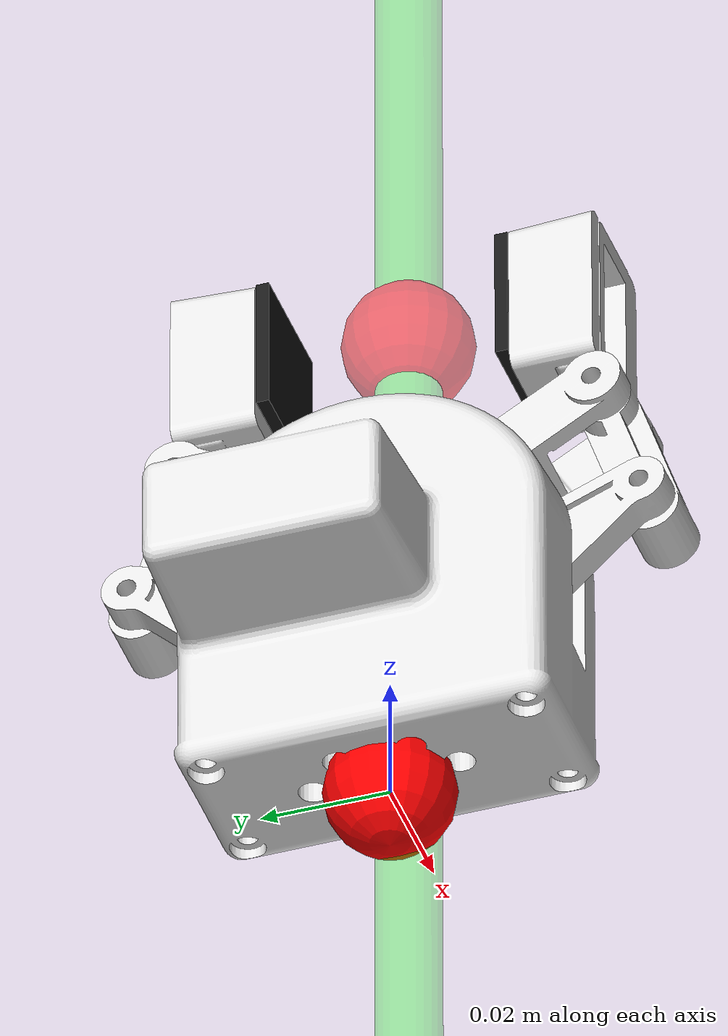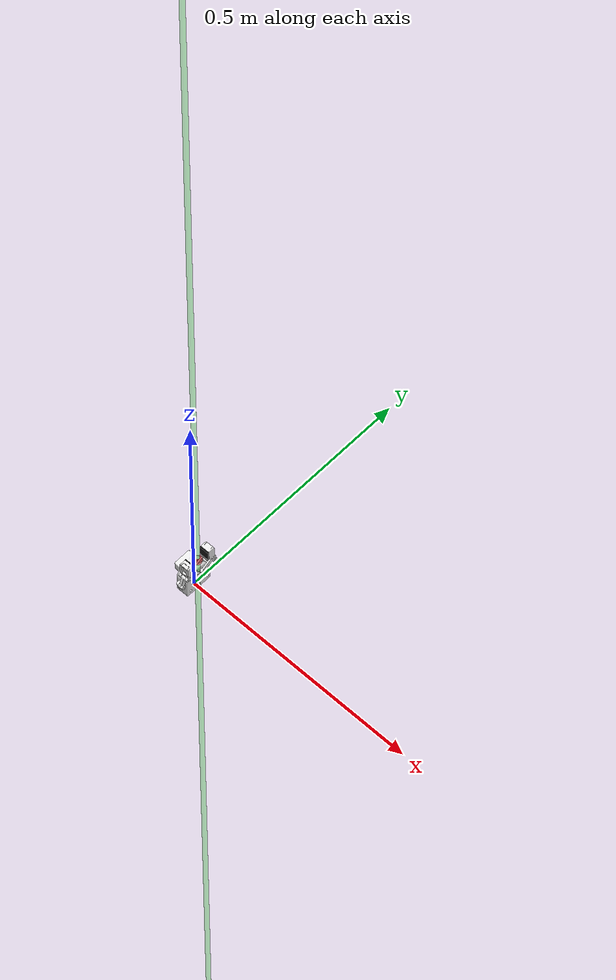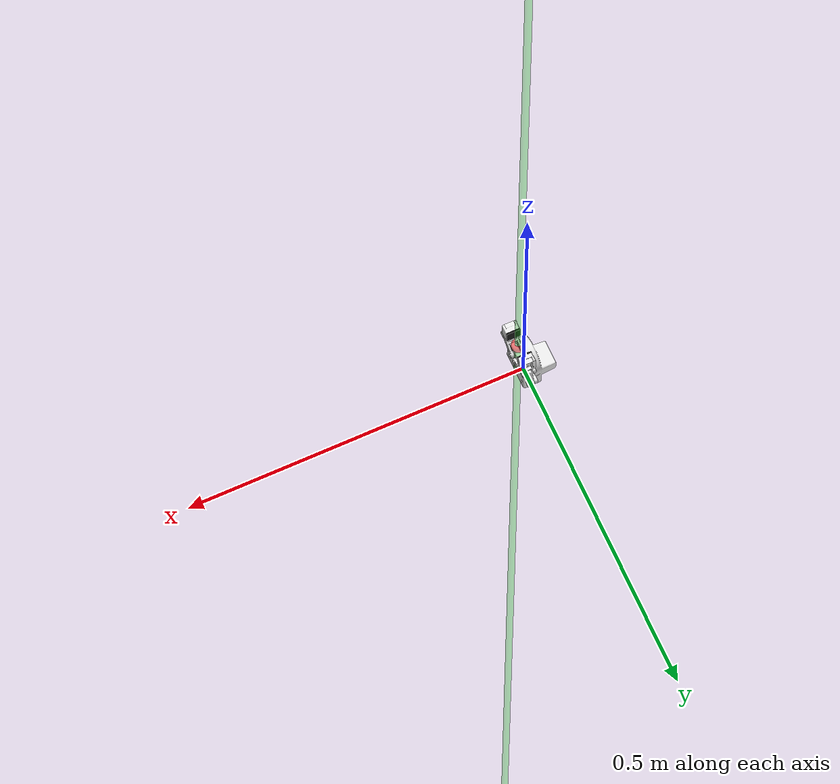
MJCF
<mujoco model="mycobot280_gripper">
  <compiler angle="radian" autolimits="true"/>
  <asset>
    <material name="material_base" specular="0.0" shininess="0.0" rgba="0.800000 0.800000 0.800000 1.000000"/>
    <material name="material_gripper" specular="1.0" shininess="0.0" rgba="1.000000 1.000000 1.000000 1.000000"/>

    <mesh name="gripper_base" file="meshes/mycobot280_gripper/meshes/gripper_base.stl" scale="1 1 1"/>
    <mesh name="gripper_left1" file="meshes/mycobot280_gripper/meshes/gripper_left1.stl" scale="1 1 1"/>
    <mesh name="gripper_left2" file="meshes/mycobot280_gripper/meshes/gripper_left2.stl" scale="1 1 1"/>
    <mesh name="gripper_left3" file="meshes/mycobot280_gripper/meshes/gripper_left3.stl" scale="1 1 1"/>
    <mesh name="gripper_right1" file="meshes/mycobot280_gripper/meshes/gripper_right1.stl" scale="1 1 1"/>
    <mesh name="gripper_right2" file="meshes/mycobot280_gripper/meshes/gripper_right2.stl" scale="1 1 1"/>
    <mesh name="gripper_right3" file="meshes/mycobot280_gripper/meshes/gripper_right3.stl" scale="1 1 1"/>
  </asset>

  <worldbody>

    <body name="mycobot280_gripper" pos="0 0 0" quat="0.707105 0 0 -0.707105">
      <site name="ft_frame" pos="0 0 0" size="0.01 0.01 0.01" rgba="1 0 0 1" type="sphere" group="1" />
      <!-- This site was added for visualization. -->
      <body name="eef" pos="0 0.0085 0.09" >
          <site name="grip_site" pos="0 0 0" size="0.01 0.01 0.01" rgba="1 0 0 0.5" type="sphere" group="1"/>
          <site name="ee_x" pos="0.1 0 0" size="0.005 .1"  quat="0.707105  0 0.707108 0 " rgba="1 0 0 0" type="cylinder" group="1"/>
          <site name="ee_y" pos="0 0.1 0" size="0.005 .1" quat="0.707105 0.707108 0 0" rgba="0 1 0 0" type="cylinder" group="1"/>
          <site name="ee_z" pos="0 0 0.1" size="0.005 .1" quat="1 0 0 0" rgba="0 0 1 0" type="cylinder" group="1"/>
          <!-- This site was added for visualization. -->
          <site name="grip_site_cylinder" pos="0 0 0" size="0.005 10" rgba="0 1 0 0.3" type="cylinder" group="1"/>
      </body>
      <inertial pos="0 0 0.035" mass="0.12"/>
      <body name="gripper_base" >
        <geom name="gripper_base_vis" pos="0 0.0119996 0.0340984" quat="0.7042 0.710001 0 0" material="material_gripper" type="mesh" contype="0" conaffinity="0" group="1" mesh="gripper_base" rgba="0.9 0.9 0.9 1"/>
        <geom pos="0 0.0119996 0.0340984" quat="0.7042 0.710001 0 0" group="0" type="mesh" mesh="gripper_base" name="gripper_base_collision" rgba="0.9 0.9 0.9 1"/>
        <body name="gripper_left3" pos="-0.012 2.46107e-05 0.0310001" quat="0.7042 0.710001 0 0">
          <joint name="gripper_base_to_gripper_left3" pos="0 0 0" axis="0 0 -1" range="0 0.8" limited="true" armature="0.1" damping="1"/>
          <geom name="gripper_left3_vis" pos="0.012 0.0033 -0.012" material="material_gripper" type="mesh" contype="0" conaffinity="0" group="1" mesh="gripper_left3" rgba="0.9 0.9 0.9 1"/>
          <geom pos="0.012 0.0033 -0.012" group="0" type="mesh" name="gripper_left3_collision" mesh="gripper_left3" rgba="0.9 0.9 0.9 1"/>
        </body>
        <body name="gripper_left2" pos="-0.005 -0.000155868 0.0529994" quat="0.7042 0.710001 0 0">
          <joint name="gripper_base_to_gripper_left2" pos="0 0 0" axis="0 0 1" range="-0.8 0.5" limited="true" armature="0.1" damping="1"/>
          <geom name="gripper_left2_vis" pos="0.005 -0.0195 -0.012" material="material_gripper" type="mesh" contype="0" conaffinity="0" group="1" mesh="gripper_left2" rgba="0.9 0.9 0.9 1"/>
          <geom pos="0.005 -0.0195 -0.012" group="0" type="mesh" name="gripper_left2_collision" mesh="gripper_left2" rgba="0.9 0.9 0.9 1"/>
          <body name="gripper_left1" pos="-0.034 -0.0065 0">
            <joint name="gripper_left2_to_gripper_left1" pos="0.0072 0.022 0" axis="0 0 1" range="-0.5 0.8" limited="true" armature="0.1" damping="1" />
            <geom name="gripper_left1_vis" pos="0.039 -0.0133 -0.012" material="material_gripper" type="mesh" contype="0" conaffinity="0" group="1" mesh="gripper_left1" rgba="0.9 0.9 0.9 1"/>
            <geom pos="0.039 -0.0133 -0.012" group="0" type="mesh" name="gripper_left1_collision" mesh="gripper_left1" rgba="0.9 0.9 0.9 1"/>
            <geom size="0.001 0.011 0.01" pos="0.020 0.041 -0.008" type="box" rgba="0.1 0.1 0.1 1" name="left_finger_tip_vis" contype="0" conaffinity="0" group="1"/>
            <geom size="0.001 0.011 0.01" pos="0.020 0.041 -0.008" type="box" rgba="0.1 0.1 0.1 1" name="left_finger_tip_collision" group="0" solref="0.01 0.5" friction = "1 0.005 0.0001" conaffinity="1" contype="1"/>
          </body>
        </body>
        <body name="gripper_right3" pos="0.012 2.46107e-05 0.0310001" quat="0.7042 0.710001 0 0">
          <joint name="gripper_base_to_gripper_right3" pos="0 0 0"  axis="0 0 1" range="0 0.8" limited="true" armature="0.1" damping="1"/>
          <geom name="gripper_right3_vis" pos="-0.012 0.0033 -0.012" material="material_gripper" type="mesh" contype="0" conaffinity="0" group="1" mesh="gripper_right3" rgba="0.9 0.9 0.9 1"/>
          <geom pos="-0.012 0.0033 -0.012" group="0" type="mesh" name="gripper_right3_collision" mesh="gripper_right3" rgba="0.9 0.9 0.9 1"/>

        </body>
        <body name="gripper_right2" pos="0.005 -0.000155868 0.0529994" quat="0.7042 0.710001 0 0">
          <joint name="gripper_base_to_gripper_right2" pos="0 0 0" axis="0 0 1" range="-0.5 0.8" limited="true" armature="0.1" damping="1"/>
          <geom name="gripper_right2_vis" pos="-0.005 -0.0195 -0.012" material="material_gripper" type="mesh" contype="0" conaffinity="0" group="1" mesh="gripper_right2" rgba="0.9 0.9 0.9 1"/>
          <geom pos="-0.005 -0.0195 -0.012" group="0" type="mesh" name="gripper_right2_collision" mesh="gripper_right2" rgba="0.9 0.9 0.9 1"/>
          <body name="gripper_right1" pos="0.034 -0.0065 0">
            <joint name="gripper_right2_to_gripper_right1" pos="-0.0072 0.022 0" axis="0 0 1" range="-0.8 0.5" limited="true" armature="0.1" damping="1"/>
            <geom name="gripper_right1_vis" pos="-0.039 -0.0133 -0.012" material="material_gripper" type="mesh" contype="0" conaffinity="0" group="1" mesh="gripper_right1" rgba="0.9 0.9 0.9 1"/>
            <geom pos="-0.039 -0.0133 -0.012" group="0" type="mesh" name="gripper_right1_collision" mesh="gripper_right1" rgba="0.9 0.9 0.9 1"/>
            <geom size="0.001 0.011 0.01" pos="-0.021 0.041 -0.008" type="box" rgba="0.1 0.1 0.1 1" name="right_finger_tip_vis" contype="0" conaffinity="0" group="1"/>
            <geom size="0.001 0.011 0.01" pos="-0.021 0.041 -0.008" type="box" rgba="0.1 0.1 0.1 1" name="right_finger_tip_collision" group="0" solref="0.01 0.5" friction = "1 0.005 0.0001" conaffinity="1" contype="1"/>
          </body>
        </body>
      </body>
    </body>
  </worldbody>

  <contact>
    <exclude body1="gripper_base" body2="gripper_left3"/>
    <exclude body1="gripper_base" body2="gripper_right3"/>
    <exclude body1="gripper_base" body2="gripper_left2"/>
    <exclude body1="gripper_base" body2="gripper_right2"/>
    <exclude body1="gripper_base" body2="gripper_left1"/>
    <exclude body1="gripper_base" body2="gripper_right1"/>

    <exclude body1="gripper_right2" body2="gripper_right1"/>
    <exclude body1="gripper_right2" body2="gripper_right3"/>
    <exclude body1="gripper_right3" body2="gripper_right1"/>
    <exclude body1="gripper_left3" body2="gripper_left1"/>
    <exclude body1="gripper_left2" body2="gripper_left3"/>
    <exclude body1="gripper_left2" body2="gripper_left1"/>

    <exclude body1="gripper_left3" body2="gripper_right3"/>
  </contact>

  <tendon>
    <fixed name="split">
      <joint joint="gripper_base_to_gripper_right3" coef="0.5"/>
      <joint joint="gripper_base_to_gripper_left3" coef="0.5"/>
    </fixed>
  </tendon>

  <equality>
    <connect anchor="0 0 0" body1="gripper_left1" body2="gripper_left3" solimp="0.95 0.99 0.001" solref="0.005 1"/>
    <connect anchor="0 0 0" body1="gripper_right1" body2="gripper_right3" solimp="0.95 0.99 0.001" solref="0.005 1"/>
    <joint joint1="gripper_base_to_gripper_right3" joint2="gripper_base_to_gripper_left3" polycoef="0 1 0 0 0" solimp="0.95 0.99 0.001" solref="0.005 1"/>
  </equality>

  <actuator>
    <position name="gripper" ctrllimited="true" ctrlrange="0 0.7" forcelimited="true" forcerange="-20 20" tendon="split" kp="1000"/>
  </actuator>

  <sensor>
    <force name="force_ee" site="ft_frame"/>
    <torque name="torque_ee" site="ft_frame"/>
  </sensor>

</mujoco>
